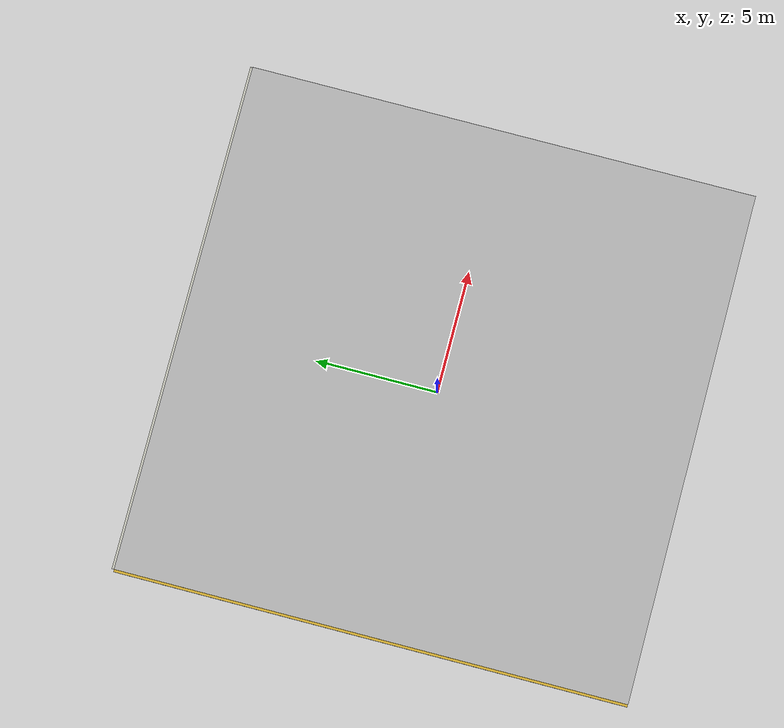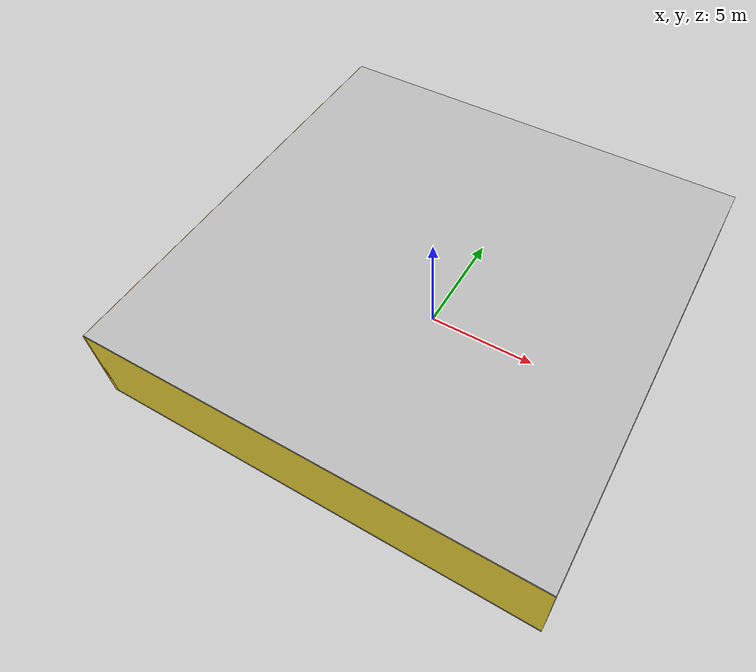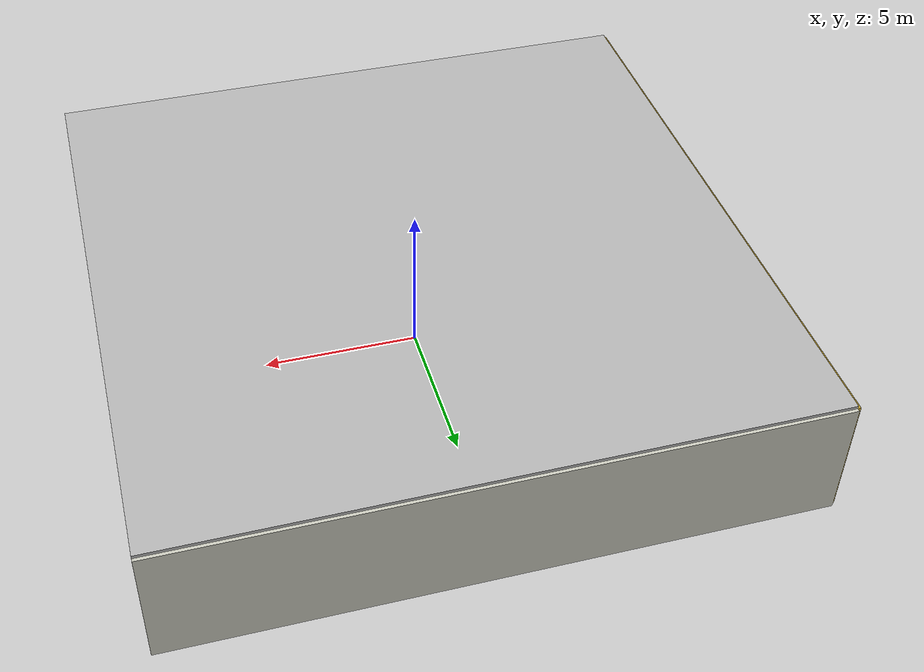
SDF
<sdf version="1.4">
 <world name="default">
  <physics type="ode">
   <max_step_size>0.001</max_step_size>
   <real_time_factor>1</real_time_factor>
   <real_time_update_rate>1000</real_time_update_rate>
   <gravity>0 0 -9.8</gravity>
  </physics>
  <scene><ambient>0.4 0.4 0.4 1</ambient><background>0.7 0.7 0.7 1</background><shadows>1</shadows></scene>
  <model name="Surrounding">
   <static>1</static>
   <link name="Ceiling">
    <collision name="Ceiling_Collision"><geometry><box><size>20 20 0.1</size></box></geometry></collision>
    <visual name="Ceiling_Visual">
     <geometry><box><size>20 20 0.1</size></box></geometry>
     <material>
      <script><uri>file://media/materials/scripts/gazebo.material</uri><name>Gazebo/Pioneer2Body</name></script>
     </material>
    </visual>
    <pose>0 0 4.05 0 0 0</pose>
   </link>
   <link name="Wall_South">
    <collision name="Wall_South_Collision">
     <geometry><box><size>20 0 4</size></box></geometry>
     <pose>0 0 2 0 -0 0</pose>
    </collision>
    <visual name="Wall_South_Visual">
     <pose>0 0 2 0 -0 0</pose>
     <geometry><box><size>20 0 4</size></box></geometry>
     <material>
      <script><uri>file://media/materials/scripts/gazebo.material</uri><name>Gazebo/ZincYellow</name></script>
     </material>
    </visual>
    <velocity_decay><linear>0</linear><angular>0</angular></velocity_decay>
    <pose>0 -10 0 0 -0 0</pose>
   </link>
   <link name="Wall_East">
    <collision name="Wall_21_Collision">
     <geometry><box><size>20 0 4</size></box></geometry>
     <pose>0 0 2 0 -0 0</pose>
    </collision>
    <visual name="Wall_21_Visual">
     <pose>0 0 2 0 -0 0</pose>
     <geometry><box><size>20 0 4</size></box></geometry>
     <material>
      <script><uri>file://media/materials/scripts/gazebo.material</uri><name>Gazebo/PioneerBody</name></script>
     </material>
    </visual>
    <velocity_decay><linear>0</linear><angular>0</angular></velocity_decay>
    <pose>10 0 0 0 -0 1.5708</pose>
   </link>
   <link name="Wall_North">
    <collision name="Wall_22_Collision">
     <geometry><box><size>20 0.2 4</size></box></geometry>
     <pose>0 0 2 0 -0 0</pose>
    </collision>
    <visual name="Wall_22_Visual">
     <pose>0 0 2 0 -0 0</pose>
     <geometry><box><size>20 0.2 4</size></box></geometry>
     <material>
      <script><uri>file://media/materials/scripts/gazebo.material</uri><name>Gazebo/PaintedWall</name></script>
     </material>
    </visual>
    <velocity_decay><linear>0</linear><angular>0</angular></velocity_decay>
    <pose>0 10 0 0 -0 0</pose>
   </link>
   <link name="Wall_West">
    <collision name="Wall_23_Collision">
     <geometry><box><size>20 0.2 4</size></box></geometry>
     <pose>0 0 2 0 -0 0</pose>
    </collision>
    <visual name="Wall_23_Visual">
     <pose>0 0 2 0 -0 0</pose>
     <geometry><box><size>20 0.2 4</size></box></geometry>
     <material>
      <script><uri>file://media/materials/scripts/gazebo.material</uri><name>Gazebo/Gold</name></script>
     </material>
    </visual>
    <velocity_decay><linear>0</linear><angular>0</angular></velocity_decay>
    <pose>-10 0 0 0 0 -1.5708</pose>
   </link>
   <link name="Ground_link">
    <collision name="collision">
     <pose>0 0 .05 0 -0 0</pose>
     <geometry><box><size>20 20 0.1</size></box></geometry>
    </collision>
    <visual name="visual">
     <pose>0 0 .05 0 -0 0</pose>
     <geometry><box><size>20 20 0.1</size></box></geometry>
     <material>
      <script><uri>file://media/materials/scripts/gazebo.material</uri><name>Gazebo/Pioneer2Body</name></script>
     </material>
    </visual>
   </link>
   <static>1</static>
  </model>
  <spherical_coordinates>
   <surface_model>EARTH_WGS84</surface_model>
   <latitude_deg>0</latitude_deg>
   <longitude_deg>0</longitude_deg>
   <elevation>0</elevation>
   <heading_deg>0</heading_deg>
  </spherical_coordinates>
  <light name="lightball_0" type="diffuse">
   <diffuse>0.8 0.8 0.8 1</diffuse>
   <specular>0.2 0.2 0.2 1</specular>
   <attenuation>
    <range>100</range>
    <constant>0.7</constant>
    <linear>0.01</linear>
    <quadratic>0.001</quadratic>
   </attenuation>
   <direction>-0.5 0.1 -0.9</direction>
   <pose>1.64494865156 0.4536571644 0.787714448085 0 0 0</pose>
  </light>
  <light name="lightball_1" type="diffuse">
   <diffuse>0.8 0.8 0.8 1</diffuse>
   <specular>0.2 0.2 0.2 1</specular>
   <attenuation>
    <range>100</range>
    <constant>0.7</constant>
    <linear>0.01</linear>
    <quadratic>0.001</quadratic>
   </attenuation>
   <direction>-0.5 0.1 -0.9</direction>
   <pose>-2.84115485489 1.56630761885 1.3491935407 0 0 0</pose>
  </light>
  <light name="lightball_2" type="diffuse">
   <diffuse>0.8 0.8 0.8 1</diffuse>
   <specular>0.2 0.2 0.2 1</specular>
   <attenuation>
    <range>100</range>
    <constant>0.7</constant>
    <linear>0.01</linear>
    <quadratic>0.001</quadratic>
   </attenuation>
   <direction>-0.5 0.1 -0.9</direction>
   <pose>-7.49990382623 -8.92608528501 1.76140007174 0 0 0</pose>
  </light>
  <light name="lightball_3" type="diffuse">
   <diffuse>0.8 0.8 0.8 1</diffuse>
   <specular>0.2 0.2 0.2 1</specular>
   <attenuation>
    <range>100</range>
    <constant>0.7</constant>
    <linear>0.01</linear>
    <quadratic>0.001</quadratic>
   </attenuation>
   <direction>-0.5 0.1 -0.9</direction>
   <pose>-0.1391615028 -7.26515260383 2.99804325157 0 0 0</pose>
  </light>
  <light name="lightball_4" type="diffuse">
   <diffuse>0.8 0.8 0.8 1</diffuse>
   <specular>0.2 0.2 0.2 1</specular>
   <attenuation>
    <range>100</range>
    <constant>0.7</constant>
    <linear>0.01</linear>
    <quadratic>0.001</quadratic>
   </attenuation>
   <direction>-0.5 0.1 -0.9</direction>
   <pose>-6.60007257011 9.38583397485 2.59155704438 0 0 0</pose>
  </light>
  <light name="lightball_5" type="diffuse">
   <diffuse>0.8 0.8 0.8 1</diffuse>
   <specular>0.2 0.2 0.2 1</specular>
   <attenuation>
    <range>100</range>
    <constant>0.7</constant>
    <linear>0.01</linear>
    <quadratic>0.001</quadratic>
   </attenuation>
   <direction>-0.5 0.1 -0.9</direction>
   <pose>0.0566495240574 -6.70565971167 2.0558975264 0 0 0</pose>
  </light>
  <light name="lightball_6" type="diffuse">
   <diffuse>0.8 0.8 0.8 1</diffuse>
   <specular>0.2 0.2 0.2 1</specular>
   <attenuation>
    <range>100</range>
    <constant>0.7</constant>
    <linear>0.01</linear>
    <quadratic>0.001</quadratic>
   </attenuation>
   <direction>-0.5 0.1 -0.9</direction>
   <pose>-7.37777713875 9.83540825262 2.82512597969 0 0 0</pose>
  </light>
  <light name="lightball_7" type="diffuse">
   <diffuse>0.8 0.8 0.8 1</diffuse>
   <specular>0.2 0.2 0.2 1</specular>
   <attenuation>
    <range>100</range>
    <constant>0.7</constant>
    <linear>0.01</linear>
    <quadratic>0.001</quadratic>
   </attenuation>
   <direction>-0.5 0.1 -0.9</direction>
   <pose>7.18052383363 1.04251207514 3.39552409963 0 0 0</pose>
  </light>
  <light name="lightball_8" type="diffuse">
   <diffuse>0.8 0.8 0.8 1</diffuse>
   <specular>0.2 0.2 0.2 1</specular>
   <attenuation>
    <range>100</range>
    <constant>0.7</constant>
    <linear>0.01</linear>
    <quadratic>0.001</quadratic>
   </attenuation>
   <direction>-0.5 0.1 -0.9</direction>
   <pose>1.32219966517 -5.48444896991 0.900414029518 0 0 0</pose>
  </light>
  <include><uri>model://table</uri><pose>-7.27017142475 -8.06688178669 0 0 0 2.95715707778</pose></include>
  <include>
   <uri>model://construction_cone</uri>
   <pose>-7.14066677883 -4.38455848408 0 0 0 2.9465952738</pose>
  </include>
  <include>
   <uri>model://textured_shapes</uri>
   <pose>-5.09073227194 -2.28219937167 0 0 0 3.10277184103</pose>
  </include>
  <include><uri>model://table</uri><pose>1.32913098267 -3.82268502447 0 0 0 1.2286983153</pose></include>
  <include>
   <uri>model://robocup_3Dsim_goal</uri>
   <pose>3.73583533211 -4.60190852582 0 0 0 1.45381281554</pose>
  </include>
  <include>
   <uri>model://construction_cone</uri>
   <pose>4.75699854661 5.07581947181 0 0 0 1.83005201131</pose>
  </include>
 </world>
</sdf>

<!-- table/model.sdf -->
<sdf version="1.5">
  <model name="table">
    <static>true</static>
    <link name="link">
      <collision name="surface">
        <pose>0 0 1.0 0 0 0</pose>
        <geometry>
          <box>
            <size>1.5 0.8 0.03</size>
          </box>
        </geometry>
        <surface>
          <friction>
            <ode>
              <mu>0.6</mu>
              <mu2>0.6</mu2>
            </ode>
          </friction>
        </surface>
      </collision>
      <visual name="visual1">
        <pose>0 0 1.0 0 0 0</pose>
        <geometry>
          <box>
            <size>1.5 0.8 0.03</size>
          </box>
        </geometry>
        <material>
          <script>
            <uri>model://media/materials/scripts/gazebo.material</uri>
            <name>Gazebo/Wood</name>
          </script>
        </material>
      </visual>
      <collision name="front_left_leg">
        <pose>0.68 0.38 0.5 0 0 0</pose>
        <geometry>
          <cylinder>
            <radius>0.02</radius>
            <length>1.0</length>
          </cylinder>
        </geometry>
      </collision>
      <visual name="front_left_leg">
        <pose>0.68 0.38 0.5 0 0 0</pose>
        <geometry>
          <cylinder>
            <radius>0.02</radius>
            <length>1.0</length>
          </cylinder>
        </geometry>
        <material>
          <script>
            <uri>model://media/materials/scripts/gazebo.material</uri>
            <name>Gazebo/Grey</name>
          </script>
        </material>
      </visual>
      <collision name="front_right_leg">
        <pose>0.68 -0.38 0.5 0 0 0</pose>
        <geometry>
          <cylinder>
            <radius>0.02</radius>
            <length>1.0</length>
          </cylinder>
        </geometry>
      </collision>
      <visual name="front_right_leg">
        <pose>0.68 -0.38 0.5 0 0 0</pose>
        <geometry>
          <cylinder>
            <radius>0.02</radius>
            <length>1.0</length>
          </cylinder>
        </geometry>
        <material>
          <script>
            <uri>model://media/materials/scripts/gazebo.material</uri>
            <name>Gazebo/Grey</name>
          </script>
        </material>
      </visual>
      <collision name="back_right_leg">
        <pose>-0.68 -0.38 0.5 0 0 0</pose>
        <geometry>
          <cylinder>
            <radius>0.02</radius>
            <length>1.0</length>
          </cylinder>
        </geometry>
      </collision>
      <visual name="back_right_leg">
        <pose>-0.68 -0.38 0.5 0 0 0</pose>
        <geometry>
          <cylinder>
            <radius>0.02</radius>
            <length>1.0</length>
          </cylinder>
        </geometry>
        <material>
          <script>
            <uri>model://media/materials/scripts/gazebo.material</uri>
            <name>Gazebo/Grey</name>
          </script>
        </material>
      </visual>
      <collision name="back_left_leg">
        <pose>-0.68 0.38 0.5 0 0 0</pose>
        <geometry>
          <cylinder>
            <radius>0.02</radius>
            <length>1.0</length>
          </cylinder>
        </geometry>
      </collision>
      <visual name="back_left_leg">
        <pose>-0.68 0.38 0.5 0 0 0</pose>
        <geometry>
          <cylinder>
            <radius>0.02</radius>
            <length>1.0</length>
          </cylinder>
        </geometry>
        <material>
          <script>
            <uri>model://media/materials/scripts/gazebo.material</uri>
            <name>Gazebo/Grey</name>
          </script>
        </material>
      </visual>
    </link>
  </model>
</sdf>

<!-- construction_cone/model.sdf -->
<sdf version="1.5">
  <model name="Construction Cone">
    <link name="link">
      <collision name="collision">
        <geometry>
          <mesh>
            <scale>10 10 10</scale>
            <uri>file://isr-testbed/construction_cone/meshes/construction_cone.dae</uri>
          </mesh>
        </geometry>
      </collision>
      <visual name="visual">
        <geometry>
          <mesh>
            <scale>10 10 10</scale>
            <uri>file://isr-testbed/construction_cone/meshes/construction_cone.dae</uri>
          </mesh>
        </geometry>
      </visual>
    </link>
  </model>
</sdf>

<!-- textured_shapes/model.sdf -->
<sdf version="1.6">
  <model name="textured_shapes">
    <pose>0 0 0.5 0 0 0</pose>
    <link name="box">
      <pose>0 -1.5 0 0 0 0</pose>
      <collision name="collision">
        <geometry>
          <box>
            <size>1 1 1</size>
          </box>
        </geometry>
      </collision>
      <visual name="visual">
        <geometry>
          <box>
            <size>1 1 1</size>
          </box>
        </geometry>
        <material>
          <script>
            <uri>model://../model_source/models/textured_shapes/materials/scripts</uri>
            <uri>model://../model_source/models/textured_shapes/materials/textures</uri>
            <name>TexturedShape/Squares</name>
          </script>
        </material>
      </visual>
    </link>
    <link name="sphere">
      <collision name="collision">
        <geometry>
          <sphere>
            <radius>0.5</radius>
          </sphere>
        </geometry>
      </collision>
      <visual name="visual">
        <geometry>
          <sphere>
            <radius>0.5</radius>
          </sphere>
        </geometry>
        <material>
          <script>
            <uri>model://../model_source/models/textured_shapes/materials/scripts</uri>
            <uri>model://../model_source/models/textured_shapes/materials/textures</uri>
            <name>TexturedShape/Squares</name>
          </script>
        </material>
      </visual>
    </link>
    <link name="cylinder">
      <pose>0 1.5 0 0 0 0</pose>
      <collision name="collision">
        <geometry>
          <cylinder>
            <radius>0.5</radius>
            <length>1</length>
          </cylinder>
        </geometry>
      </collision>
      <visual name="visual">
        <geometry>
          <cylinder>
            <radius>0.5</radius>
            <length>1</length>
          </cylinder>
        </geometry>
        <material>
          <script>
            <uri>model://../model_source/models/textured_shapes/materials/scripts</uri>
            <uri>model://../model_source/models/textured_shapes/materials/textures</uri>
            <name>TexturedShape/Squares</name>
          </script>
        </material>
      </visual>
    </link>
  </model>
</sdf>

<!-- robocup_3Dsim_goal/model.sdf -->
<sdf version="1.5">
  <model name="robocup_3d_goal">
    <static>true</static>
    <link name="left_post">
      <pose>0 1.05 0.45 0 0 0</pose>
      <collision name="collision">
        <geometry>
          <cylinder>
            <radius>0.05</radius>
            <length>0.9</length>
          </cylinder>
        </geometry>
      </collision>
      <visual name="visual">
        <geometry>
          <cylinder>
            <radius>0.05</radius>
            <length>0.9</length>
          </cylinder>
        </geometry>
        <material>
          <script>
            <uri>file://media/materials/scripts/gazebo.material</uri>
            <name>Gazebo/ZincYellow</name>
          </script>
        </material>
      </visual>
    </link>
    <link name="left_support_horiz_lower">
      <pose>0.30 1.05 0.01 0 0 0</pose>
      <collision name="collision">
        <geometry>
          <box>
            <size>0.50 0.02 0.02</size>
          </box>
        </geometry>
      </collision>
      <visual name="visual">
        <geometry>
          <box>
            <size>0.50 0.02 0.02</size>
          </box>
        </geometry>
        <material>
          <script>
            <uri>file://media/materials/scripts/gazebo.material</uri>
            <name>Gazebo/White</name>
          </script>
        </material>
      </visual>
    </link>
    <link name="left_support_horiz_upper">
      <pose>0.30 1.05 0.79 0 0 0</pose>
      <collision name="collision">
        <geometry>
          <box>
            <size>0.50 0.02 0.02</size>
          </box>
        </geometry>
      </collision>
      <visual name="visual">
        <geometry>
          <box>
            <size>0.50 0.02 0.02</size>
          </box>
        </geometry>
        <material>
          <script>
            <uri>file://media/materials/scripts/gazebo.material</uri>
            <name>Gazebo/White</name>
          </script>
        </material>
      </visual>
    </link>
    <link name="left_support_vertical">
      <pose>0.56 1.05 0.4 0 1.5708 0</pose>
      <collision name="collision">
        <geometry>
          <box>
            <size>0.80 0.02 0.02</size>
          </box>
        </geometry>
      </collision>
      <visual name="visual">
        <geometry>
          <box>
            <size>0.80 0.02 0.02</size>
          </box>
        </geometry>
        <material>
          <script>
            <uri>file://media/materials/scripts/gazebo.material</uri>
            <name>Gazebo/White</name>
          </script>
        </material>
      </visual>
    </link>
    <link name="right_support_horiz_lower">
      <pose>0.30 -1.05 0.01 0 0 0</pose>
      <collision name="collision">
        <geometry>
          <box>
            <size>0.50 0.02 0.02</size>
          </box>
        </geometry>
      </collision>
      <visual name="visual">
        <geometry>
          <box>
            <size>0.50 0.02 0.02</size>
          </box>
        </geometry>
        <material>
          <script>
            <uri>file://media/materials/scripts/gazebo.material</uri>
            <name>Gazebo/White</name>
          </script>
        </material>
      </visual>
    </link>
    <link name="right_support_horiz_upper">
      <pose>0.30 -1.05 0.79 0 0 0</pose>
      <collision name="collision">
        <geometry>
          <box>
            <size>0.50 0.02 0.02</size>
          </box>
        </geometry>
      </collision>
      <visual name="visual">
        <geometry>
          <box>
            <size>0.50 0.02 0.02</size>
          </box>
        </geometry>
        <material>
          <script>
            <uri>file://media/materials/scripts/gazebo.material</uri>
            <name>Gazebo/White</name>
          </script>
        </material>
      </visual>
    </link>
    <link name="right_support_vertical">
      <pose>0.56 -1.05 0.4 0 1.5708 0</pose>
      <collision name="collision">
        <geometry>
          <box>
            <size>0.80 0.02 0.02</size>
          </box>
        </geometry>
      </collision>
      <visual name="visual">
        <geometry>
          <box>
            <size>0.80 0.02 0.02</size>
          </box>
        </geometry>
        <material>
          <script>
            <uri>file://media/materials/scripts/gazebo.material</uri>
            <name>Gazebo/White</name>
          </script>
        </material>
      </visual>
    </link>
    <link name="center_support_horiz_lower">
      <pose>0.56 0 0.01 0 1.5708 0</pose>
      <collision name="collision">
        <geometry>
          <box>
            <size>0.02 2.08 0.02</size>
          </box>
        </geometry>
      </collision>
      <visual name="visual">
        <geometry>
          <box>
            <size>0.02 2.08 0.02</size>
          </box>
        </geometry>
        <material>
          <script>
            <uri>file://media/materials/scripts/gazebo.material</uri>
            <name>Gazebo/White</name>
          </script>
        </material>
      </visual>
    </link>
    <link name="center_support_horiz_upper">
      <pose>0.56 0 0.79 0 1.5708 0</pose>
      <collision name="collision">
        <geometry>
          <box>
            <size>0.02 2.08 0.02</size>
          </box>
        </geometry>
      </collision>
      <visual name="visual">
        <geometry>
          <box>
            <size>0.02 2.08 0.02</size>
          </box>
        </geometry>
        <material>
          <script>
            <uri>file://media/materials/scripts/gazebo.material</uri>
            <name>Gazebo/White</name>
          </script>
        </material>
      </visual>
    </link>
    <link name="right_post">
      <pose>0 -1.05 0.45 0 0 0</pose>
      <collision name="collision">
        <geometry>
          <cylinder>
            <radius>0.05</radius>
            <length>0.9</length>
          </cylinder>
        </geometry>
      </collision>
      <visual name="visual">
        <geometry>
          <cylinder>
            <radius>0.05</radius>
            <length>0.9</length>
          </cylinder>
        </geometry>
        <material>
          <script>
            <uri>file://media/materials/scripts/gazebo.material</uri>
            <name>Gazebo/ZincYellow</name>
          </script>
        </material>
      </visual>
    </link>
    <link name="crossbar">
      <pose>0 0 0.85 1.57 1.57 0</pose>
      <collision name="collision">
        <geometry>
          <cylinder>
            <radius>0.05</radius>
            <length>2.0</length>
          </cylinder>
        </geometry>
      </collision>
      <visual name="visual">
        <geometry>
          <cylinder>
            <radius>0.05</radius>
            <length>2.0</length>
          </cylinder>
        </geometry>
        <material>
          <script>
            <uri>file://media/materials/scripts/gazebo.material</uri>
            <name>Gazebo/ZincYellow</name>
          </script>
        </material>
      </visual>
    </link>
    <link name="center_net">
      <pose>0.56 0 0.40 0 0 0</pose>
      <collision name="collision">
        <geometry>
          <box>
            <size>0.01 2.1 0.80</size>
          </box>
        </geometry>
      </collision>
      <visual name="visual">
        <geometry>
          <box>
            <size>0.01 2.1 0.80</size>
          </box>
        </geometry>
        <material>
          <script>
            <uri>model://../model_source/models/robocup09_spl_field/materials/scripts/</uri>
            <uri>model://../model_source/models/robocup09_spl_field/materials/textures/</uri>
            <name>RoboCup/Net</name>
          </script>
        </material>
      </visual>
    </link>
    <link name="left_net">
      <pose>0.30 1.05 0.40 0 0 0</pose>
      <collision name="collision">
        <geometry>
          <box>
            <size>0.50 0.01 0.76</size>
          </box>
        </geometry>
      </collision>
      <visual name="visual">
        <geometry>
          <box>
            <size>0.50 0.01 0.76</size>
          </box>
        </geometry>
        <material>
          <script>
            <uri>model://../model_source/models/robocup09_spl_field/materials/scripts/</uri>
            <uri>model://../model_source/models/robocup09_spl_field/materials/textures/</uri>
            <name>RoboCup/Net</name>
          </script>
        </material>
      </visual>
    </link>
    <link name="right_net">
      <pose>0.30 -1.05 0.40 0 0 0</pose>
      <collision name="collision">
        <geometry>
          <box>
            <size>0.50 0.01 0.76</size>
          </box>
        </geometry>
      </collision>
      <visual name="visual">
        <geometry>
          <box>
            <size>0.50 0.01 0.76</size>
          </box>
        </geometry>
        <material>
          <script>
            <uri>model://../model_source/models/robocup09_spl_field/materials/scripts/</uri>
            <uri>model://../model_source/models/robocup09_spl_field/materials/textures/</uri>
            <name>RoboCup/Net</name>
          </script>
        </material>
      </visual>
    </link>
  </model>
</sdf>
